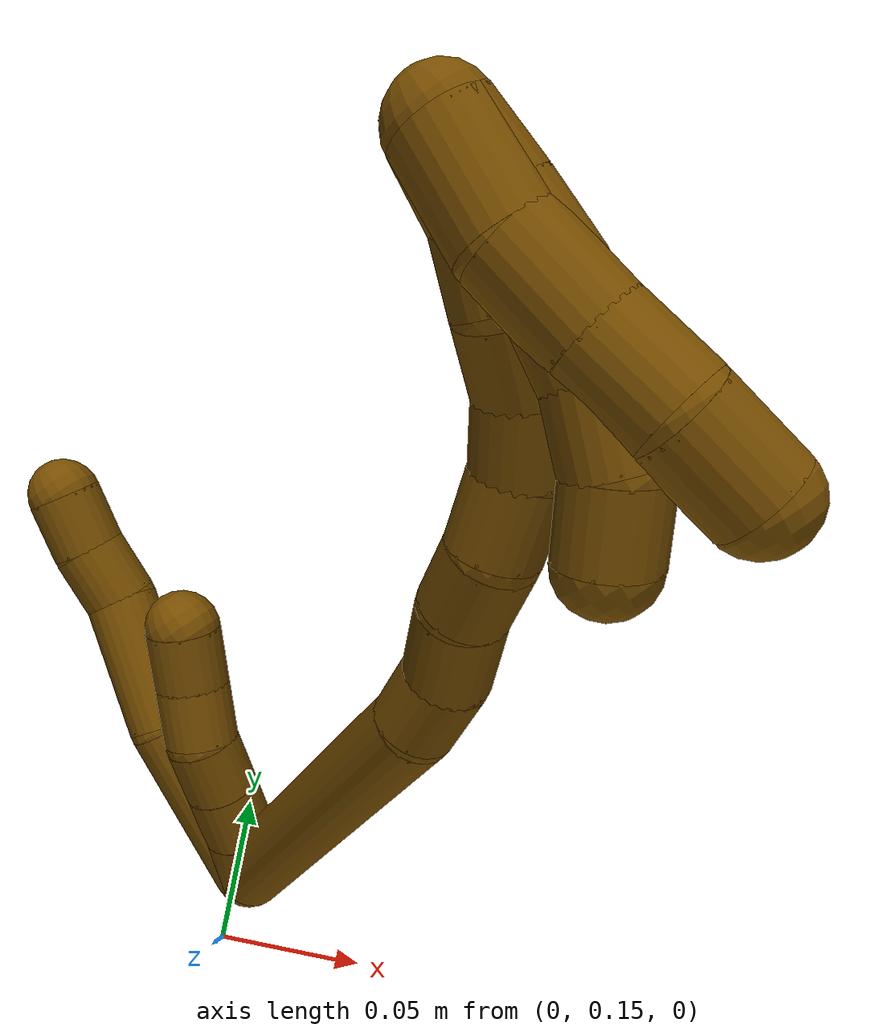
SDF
<sdf version="1.7">
 <world name="default">
  <model name="12">
   <static>0</static>
   <link name="12">
    <collision name="collision-cylinder-e_1_2_8">
     <pose>0.002709 -0.005069 0.030578 0.164292 0.087176 0.007182</pose>
     <geometry><cylinder><radius>0.0125</radius><length>0.062227</length></cylinder></geometry>
     <surface>
      <friction><ode><mu>1.16</mu><mu2>1.16</mu2><slip1>0</slip1><slip2>0</slip2></ode></friction>
      <contact><ode><kp>1e+06</kp><kd>1</kd><max_vel>0</max_vel><min_depth>0.001</min_depth></ode></contact>
     </surface>
    </collision>
    <visual name="visual-cylinder-e_1_2_8">
     <pose>0.002709 -0.005069 0.030578 0.164292 0.087176 0.007182</pose>
     <geometry><cylinder><radius>0.0125</radius><length>0.062227</length></cylinder></geometry>
     <material><ambient>0.466667 0.301961 0 1</ambient></material>
    </visual>
    <collision name="collision-cylinder-e_2_8_9">
     <pose>0.011655 -0.010178 0.083678 0.001749 0.270151 0.000238</pose>
     <geometry><cylinder><radius>0.0125</radius><length>0.04674</length></cylinder></geometry>
     <surface>
      <friction><ode><mu>1.16</mu><mu2>1.16</mu2><slip1>0</slip1><slip2>0</slip2></ode></friction>
      <contact><ode><kp>1e+06</kp><kd>1</kd><max_vel>0</max_vel><min_depth>0.001</min_depth></ode></contact>
     </surface>
    </collision>
    <visual name="visual-cylinder-e_2_8_9">
     <pose>0.011655 -0.010178 0.083678 0.001749 0.270151 0.000238</pose>
     <geometry><cylinder><radius>0.0125</radius><length>0.04674</length></cylinder></geometry>
     <material><ambient>0.466667 0.301961 0 1</ambient></material>
    </visual>
    <collision name="collision-cylinder-e_3_9_10">
     <pose>0.018298 -0.011601 0.116473 0.133887 0.039134 0.002624</pose>
     <geometry><cylinder><radius>0.0125</radius><length>0.020746</length></cylinder></geometry>
     <surface>
      <friction><ode><mu>1.16</mu><mu2>1.16</mu2><slip1>0</slip1><slip2>0</slip2></ode></friction>
      <contact><ode><kp>1e+06</kp><kd>1</kd><max_vel>0</max_vel><min_depth>0.001</min_depth></ode></contact>
     </surface>
    </collision>
    <visual name="visual-cylinder-e_3_9_10">
     <pose>0.018298 -0.011601 0.116473 0.133887 0.039134 0.002624</pose>
     <geometry><cylinder><radius>0.0125</radius><length>0.020746</length></cylinder></geometry>
     <material><ambient>0.466667 0.301961 0 1</ambient></material>
    </visual>
    <collision name="collision-cylinder-e_4_10_6">
     <pose>0.020516 -0.014811 0.136557 0.184022 0.179674 0.016623</pose>
     <geometry><cylinder><radius>0.0125</radius><length>0.020287</length></cylinder></geometry>
     <surface>
      <friction><ode><mu>1.16</mu><mu2>1.16</mu2><slip1>0</slip1><slip2>0</slip2></ode></friction>
      <contact><ode><kp>1e+06</kp><kd>1</kd><max_vel>0</max_vel><min_depth>0.001</min_depth></ode></contact>
     </surface>
    </collision>
    <visual name="visual-cylinder-e_4_10_6">
     <pose>0.020516 -0.014811 0.136557 0.184022 0.179674 0.016623</pose>
     <geometry><cylinder><radius>0.0125</radius><length>0.020287</length></cylinder></geometry>
     <material><ambient>0.466667 0.301961 0 1</ambient></material>
    </visual>
    <collision name="collision-cylinder-e_1_2_11">
     <pose>0.003097 -0.005354 0.007858 0.598152 0.314853 0.097809</pose>
     <geometry><cylinder><radius>0.0125</radius><length>0.02</length></cylinder></geometry>
     <surface>
      <friction><ode><mu>1.16</mu><mu2>1.16</mu2><slip1>0</slip1><slip2>0</slip2></ode></friction>
      <contact><ode><kp>1e+06</kp><kd>1</kd><max_vel>0</max_vel><min_depth>0.001</min_depth></ode></contact>
     </surface>
    </collision>
    <visual name="visual-cylinder-e_1_2_11">
     <pose>0.003097 -0.005354 0.007858 0.598152 0.314853 0.097809</pose>
     <geometry><cylinder><radius>0.0125</radius><length>0.02</length></cylinder></geometry>
     <material><ambient>0.466667 0.301961 0 1</ambient></material>
    </visual>
    <collision name="collision-cylinder-e_2_11_12">
     <pose>0.008187 -0.015218 0.024415 0.478145 0.200645 0.049059</pose>
     <geometry><cylinder><radius>0.0125</radius><length>0.02</length></cylinder></geometry>
     <surface>
      <friction><ode><mu>1.16</mu><mu2>1.16</mu2><slip1>0</slip1><slip2>0</slip2></ode></friction>
      <contact><ode><kp>1e+06</kp><kd>1</kd><max_vel>0</max_vel><min_depth>0.001</min_depth></ode></contact>
     </surface>
    </collision>
    <visual name="visual-cylinder-e_2_11_12">
     <pose>0.008187 -0.015218 0.024415 0.478145 0.200645 0.049059</pose>
     <geometry><cylinder><radius>0.0125</radius><length>0.02</length></cylinder></geometry>
     <material><ambient>0.466667 0.301961 0 1</ambient></material>
    </visual>
    <collision name="collision-cylinder-e_3_12_13">
     <pose>0.012157 -0.024094 0.041892 0.461749 0.199069 0.046941</pose>
     <geometry><cylinder><radius>0.0125</radius><length>0.02</length></cylinder></geometry>
     <surface>
      <friction><ode><mu>1.16</mu><mu2>1.16</mu2><slip1>0</slip1><slip2>0</slip2></ode></friction>
      <contact><ode><kp>1e+06</kp><kd>1</kd><max_vel>0</max_vel><min_depth>0.001</min_depth></ode></contact>
     </surface>
    </collision>
    <visual name="visual-cylinder-e_3_12_13">
     <pose>0.012157 -0.024094 0.041892 0.461749 0.199069 0.046941</pose>
     <geometry><cylinder><radius>0.0125</radius><length>0.02</length></cylinder></geometry>
     <material><ambient>0.466667 0.301961 0 1</ambient></material>
    </visual>
    <collision name="collision-cylinder-e_4_13_14">
     <pose>0.01824 -0.031106 0.059394 0.294319 0.423086 0.063646</pose>
     <geometry><cylinder><radius>0.0125</radius><length>0.02</length></cylinder></geometry>
     <surface>
      <friction><ode><mu>1.16</mu><mu2>1.16</mu2><slip1>0</slip1><slip2>0</slip2></ode></friction>
      <contact><ode><kp>1e+06</kp><kd>1</kd><max_vel>0</max_vel><min_depth>0.001</min_depth></ode></contact>
     </surface>
    </collision>
    <visual name="visual-cylinder-e_4_13_14">
     <pose>0.01824 -0.031106 0.059394 0.294319 0.423086 0.063646</pose>
     <geometry><cylinder><radius>0.0125</radius><length>0.02</length></cylinder></geometry>
     <material><ambient>0.466667 0.301961 0 1</ambient></material>
    </visual>
    <collision name="collision-cylinder-e_5_14_5">
     <pose>0.026336 -0.037247 0.076597 0.391095 0.410416 0.082409</pose>
     <geometry><cylinder><radius>0.0125</radius><length>0.02</length></cylinder></geometry>
     <surface>
      <friction><ode><mu>1.16</mu><mu2>1.16</mu2><slip1>0</slip1><slip2>0</slip2></ode></friction>
      <contact><ode><kp>1e+06</kp><kd>1</kd><max_vel>0</max_vel><min_depth>0.001</min_depth></ode></contact>
     </surface>
    </collision>
    <visual name="visual-cylinder-e_5_14_5">
     <pose>0.026336 -0.037247 0.076597 0.391095 0.410416 0.082409</pose>
     <geometry><cylinder><radius>0.0125</radius><length>0.02</length></cylinder></geometry>
     <material><ambient>0.466667 0.301961 0 1</ambient></material>
    </visual>
    <collision name="collision-cylinder-e_1_2_15">
     <pose>0.03478 -0.05274 0.012452 1.33894 0.570596 0.456151</pose>
     <geometry><cylinder><radius>0.0125</radius><length>0.128782</length></cylinder></geometry>
     <surface>
      <friction><ode><mu>1.16</mu><mu2>1.16</mu2><slip1>0</slip1><slip2>0</slip2></ode></friction>
      <contact><ode><kp>1e+06</kp><kd>1</kd><max_vel>0</max_vel><min_depth>0.001</min_depth></ode></contact>
     </surface>
    </collision>
    <visual name="visual-cylinder-e_1_2_15">
     <pose>0.03478 -0.05274 0.012452 1.33894 0.570596 0.456151</pose>
     <geometry><cylinder><radius>0.0125</radius><length>0.128782</length></cylinder></geometry>
     <material><ambient>0.466667 0.301961 0 1</ambient></material>
    </visual>
    <collision name="collision-cylinder-e_2_15_16">
     <pose>0.076285 -0.113045 0.028891 1.08583 0.666467 0.411805</pose>
     <geometry><cylinder><radius>0.0125</radius><length>0.021759</length></cylinder></geometry>
     <surface>
      <friction><ode><mu>1.16</mu><mu2>1.16</mu2><slip1>0</slip1><slip2>0</slip2></ode></friction>
      <contact><ode><kp>1e+06</kp><kd>1</kd><max_vel>0</max_vel><min_depth>0.001</min_depth></ode></contact>
     </surface>
    </collision>
    <visual name="visual-cylinder-e_2_15_16">
     <pose>0.076285 -0.113045 0.028891 1.08583 0.666467 0.411805</pose>
     <geometry><cylinder><radius>0.0125</radius><length>0.021759</length></cylinder></geometry>
     <material><ambient>0.466667 0.301961 0 1</ambient></material>
    </visual>
    <collision name="collision-cylinder-e_3_16_17">
     <pose>0.087818 -0.131641 0.039806 1.00994 0.3535 0.196827</pose>
     <geometry><cylinder><radius>0.0125</radius><length>0.02777</length></cylinder></geometry>
     <surface>
      <friction><ode><mu>1.16</mu><mu2>1.16</mu2><slip1>0</slip1><slip2>0</slip2></ode></friction>
      <contact><ode><kp>1e+06</kp><kd>1</kd><max_vel>0</max_vel><min_depth>0.001</min_depth></ode></contact>
     </surface>
    </collision>
    <visual name="visual-cylinder-e_3_16_17">
     <pose>0.087818 -0.131641 0.039806 1.00994 0.3535 0.196827</pose>
     <geometry><cylinder><radius>0.0125</radius><length>0.02777</length></cylinder></geometry>
     <material><ambient>0.466667 0.301961 0 1</ambient></material>
    </visual>
    <collision name="collision-cylinder-e_4_17_18">
     <pose>0.098012 -0.150235 0.050986 1.05869 0.555727 0.330708</pose>
     <geometry><cylinder><radius>0.0125</radius><length>0.020425</length></cylinder></geometry>
     <surface>
      <friction><ode><mu>1.16</mu><mu2>1.16</mu2><slip1>0</slip1><slip2>0</slip2></ode></friction>
      <contact><ode><kp>1e+06</kp><kd>1</kd><max_vel>0</max_vel><min_depth>0.001</min_depth></ode></contact>
     </surface>
    </collision>
    <visual name="visual-cylinder-e_4_17_18">
     <pose>0.098012 -0.150235 0.050986 1.05869 0.555727 0.330708</pose>
     <geometry><cylinder><radius>0.0125</radius><length>0.020425</length></cylinder></geometry>
     <material><ambient>0.466667 0.301961 0 1</ambient></material>
    </visual>
    <collision name="collision-cylinder-e_5_18_19">
     <pose>0.109945 -0.163469 0.061326 0.749909 0.666508 0.270815</pose>
     <geometry><cylinder><radius>0.0125</radius><length>0.021173</length></cylinder></geometry>
     <surface>
      <friction><ode><mu>1.16</mu><mu2>1.16</mu2><slip1>0</slip1><slip2>0</slip2></ode></friction>
      <contact><ode><kp>1e+06</kp><kd>1</kd><max_vel>0</max_vel><min_depth>0.001</min_depth></ode></contact>
     </surface>
    </collision>
    <visual name="visual-cylinder-e_5_18_19">
     <pose>0.109945 -0.163469 0.061326 0.749909 0.666508 0.270815</pose>
     <geometry><cylinder><radius>0.0125</radius><length>0.021173</length></cylinder></geometry>
     <material><ambient>0.466667 0.301961 0 1</ambient></material>
    </visual>
    <collision name="collision-cylinder-e_6_19_20">
     <pose>0.12054 -0.174811 0.074631 0.666035 0.415546 0.145584</pose>
     <geometry><cylinder><radius>0.0125</radius><length>0.020062</length></cylinder></geometry>
     <surface>
      <friction><ode><mu>1.16</mu><mu2>1.16</mu2><slip1>0</slip1><slip2>0</slip2></ode></friction>
      <contact><ode><kp>1e+06</kp><kd>1</kd><max_vel>0</max_vel><min_depth>0.001</min_depth></ode></contact>
     </surface>
    </collision>
    <visual name="visual-cylinder-e_6_19_20">
     <pose>0.12054 -0.174811 0.074631 0.666035 0.415546 0.145584</pose>
     <geometry><cylinder><radius>0.0125</radius><length>0.020062</length></cylinder></geometry>
     <material><ambient>0.466667 0.301961 0 1</ambient></material>
    </visual>
    <collision name="collision-cylinder-e_7_20_21">
     <pose>0.126046 -0.185841 0.090163 0.57254 0.146224 0.043112</pose>
     <geometry><cylinder><radius>0.0125</radius><length>0.020001</length></cylinder></geometry>
     <surface>
      <friction><ode><mu>1.16</mu><mu2>1.16</mu2><slip1>0</slip1><slip2>0</slip2></ode></friction>
      <contact><ode><kp>1e+06</kp><kd>1</kd><max_vel>0</max_vel><min_depth>0.001</min_depth></ode></contact>
     </surface>
    </collision>
    <visual name="visual-cylinder-e_7_20_21">
     <pose>0.126046 -0.185841 0.090163 0.57254 0.146224 0.043112</pose>
     <geometry><cylinder><radius>0.0125</radius><length>0.020001</length></cylinder></geometry>
     <material><ambient>0.466667 0.301961 0 1</ambient></material>
    </visual>
    <collision name="collision-cylinder-e_8_21_22">
     <pose>0.130138 -0.194071 0.107689 0.302084 0.266617 0.040816</pose>
     <geometry><cylinder><radius>0.0125</radius><length>0.02</length></cylinder></geometry>
     <surface>
      <friction><ode><mu>1.16</mu><mu2>1.16</mu2><slip1>0</slip1><slip2>0</slip2></ode></friction>
      <contact><ode><kp>1e+06</kp><kd>1</kd><max_vel>0</max_vel><min_depth>0.001</min_depth></ode></contact>
     </surface>
    </collision>
    <visual name="visual-cylinder-e_8_21_22">
     <pose>0.130138 -0.194071 0.107689 0.302084 0.266617 0.040816</pose>
     <geometry><cylinder><radius>0.0125</radius><length>0.02</length></cylinder></geometry>
     <material><ambient>0.466667 0.301961 0 1</ambient></material>
    </visual>
    <collision name="collision-cylinder-e_9_22_1">
     <pose>0.13248 -0.201255 0.125932 0.445558 -0.029259 -0.006629</pose>
     <geometry><cylinder><radius>0.0125</radius><length>0.020027</length></cylinder></geometry>
     <surface>
      <friction><ode><mu>1.16</mu><mu2>1.16</mu2><slip1>0</slip1><slip2>0</slip2></ode></friction>
      <contact><ode><kp>1e+06</kp><kd>1</kd><max_vel>0</max_vel><min_depth>0.001</min_depth></ode></contact>
     </surface>
    </collision>
    <visual name="visual-cylinder-e_9_22_1">
     <pose>0.13248 -0.201255 0.125932 0.445558 -0.029259 -0.006629</pose>
     <geometry><cylinder><radius>0.0125</radius><length>0.020027</length></cylinder></geometry>
     <material><ambient>0.466667 0.301961 0 1</ambient></material>
    </visual>
    <collision name="collision-cylinder-e_1_1_23">
     <pose>0.130802 -0.207119 0.121569 3.02638 -0.102327 -1.45226</pose>
     <geometry><cylinder><radius>0.0125</radius><length>0.02711</length></cylinder></geometry>
     <surface>
      <friction><ode><mu>1.16</mu><mu2>1.16</mu2><slip1>0</slip1><slip2>0</slip2></ode></friction>
      <contact><ode><kp>1e+06</kp><kd>1</kd><max_vel>0</max_vel><min_depth>0.001</min_depth></ode></contact>
     </surface>
    </collision>
    <visual name="visual-cylinder-e_1_1_23">
     <pose>0.130802 -0.207119 0.121569 3.02638 -0.102327 -1.45226</pose>
     <geometry><cylinder><radius>0.0125</radius><length>0.02711</length></cylinder></geometry>
     <material><ambient>0.466667 0.301961 0 1</ambient></material>
    </visual>
    <collision name="collision-cylinder-e_2_23_24">
     <pose>0.130936 -0.210336 0.095449 3.01137 0.117719 1.46977</pose>
     <geometry><cylinder><radius>0.0125</radius><length>0.025847</length></cylinder></geometry>
     <surface>
      <friction><ode><mu>1.16</mu><mu2>1.16</mu2><slip1>0</slip1><slip2>0</slip2></ode></friction>
      <contact><ode><kp>1e+06</kp><kd>1</kd><max_vel>0</max_vel><min_depth>0.001</min_depth></ode></contact>
     </surface>
    </collision>
    <visual name="visual-cylinder-e_2_23_24">
     <pose>0.130936 -0.210336 0.095449 3.01137 0.117719 1.46977</pose>
     <geometry><cylinder><radius>0.0125</radius><length>0.025847</length></cylinder></geometry>
     <material><ambient>0.466667 0.301961 0 1</ambient></material>
    </visual>
    <collision name="collision-cylinder-e_3_24_25">
     <pose>0.134194 -0.214072 0.071605 2.95752 0.152726 1.38434</pose>
     <geometry><cylinder><radius>0.0125</radius><length>0.022886</length></cylinder></geometry>
     <surface>
      <friction><ode><mu>1.16</mu><mu2>1.16</mu2><slip1>0</slip1><slip2>0</slip2></ode></friction>
      <contact><ode><kp>1e+06</kp><kd>1</kd><max_vel>0</max_vel><min_depth>0.001</min_depth></ode></contact>
     </surface>
    </collision>
    <visual name="visual-cylinder-e_3_24_25">
     <pose>0.134194 -0.214072 0.071605 2.95752 0.152726 1.38434</pose>
     <geometry><cylinder><radius>0.0125</radius><length>0.022886</length></cylinder></geometry>
     <material><ambient>0.466667 0.301961 0 1</ambient></material>
    </visual>
    <collision name="collision-cylinder-e_4_25_4">
     <pose>0.138546 -0.215113 0.048738 -3.0542 0.217841 -2.38088</pose>
     <geometry><cylinder><radius>0.0125</radius><length>0.024157</length></cylinder></geometry>
     <surface>
      <friction><ode><mu>1.16</mu><mu2>1.16</mu2><slip1>0</slip1><slip2>0</slip2></ode></friction>
      <contact><ode><kp>1e+06</kp><kd>1</kd><max_vel>0</max_vel><min_depth>0.001</min_depth></ode></contact>
     </surface>
    </collision>
    <visual name="visual-cylinder-e_4_25_4">
     <pose>0.138546 -0.215113 0.048738 -3.0542 0.217841 -2.38088</pose>
     <geometry><cylinder><radius>0.0125</radius><length>0.024157</length></cylinder></geometry>
     <material><ambient>0.466667 0.301961 0 1</ambient></material>
    </visual>
    <collision name="collision-cylinder-e_1_1_26">
     <pose>0.132734 -0.205599 0.124979 3.13862 0.054777 3.03301</pose>
     <geometry><cylinder><radius>0.0125</radius><length>0.02</length></cylinder></geometry>
     <surface>
      <friction><ode><mu>1.16</mu><mu2>1.16</mu2><slip1>0</slip1><slip2>0</slip2></ode></friction>
      <contact><ode><kp>1e+06</kp><kd>1</kd><max_vel>0</max_vel><min_depth>0.001</min_depth></ode></contact>
     </surface>
    </collision>
    <visual name="visual-cylinder-e_1_1_26">
     <pose>0.132734 -0.205599 0.124979 3.13862 0.054777 3.03301</pose>
     <geometry><cylinder><radius>0.0125</radius><length>0.02</length></cylinder></geometry>
     <material><ambient>0.466667 0.301961 0 1</ambient></material>
    </visual>
    <collision name="collision-cylinder-e_2_26_27">
     <pose>0.133148 -0.206221 0.105012 3.08225 -0.013397 -0.443973</pose>
     <geometry><cylinder><radius>0.0125</radius><length>0.02</length></cylinder></geometry>
     <surface>
      <friction><ode><mu>1.16</mu><mu2>1.16</mu2><slip1>0</slip1><slip2>0</slip2></ode></friction>
      <contact><ode><kp>1e+06</kp><kd>1</kd><max_vel>0</max_vel><min_depth>0.001</min_depth></ode></contact>
     </surface>
    </collision>
    <visual name="visual-cylinder-e_2_26_27">
     <pose>0.133148 -0.206221 0.105012 3.08225 -0.013397 -0.443973</pose>
     <geometry><cylinder><radius>0.0125</radius><length>0.02</length></cylinder></geometry>
     <material><ambient>0.466667 0.301961 0 1</ambient></material>
    </visual>
    <collision name="collision-cylinder-e_3_27_28">
     <pose>0.131618 -0.206404 0.085137 -3.1002 -0.1401 2.5678</pose>
     <geometry><cylinder><radius>0.0125</radius><length>0.02</length></cylinder></geometry>
     <surface>
      <friction><ode><mu>1.16</mu><mu2>1.16</mu2><slip1>0</slip1><slip2>0</slip2></ode></friction>
      <contact><ode><kp>1e+06</kp><kd>1</kd><max_vel>0</max_vel><min_depth>0.001</min_depth></ode></contact>
     </surface>
    </collision>
    <visual name="visual-cylinder-e_3_27_28">
     <pose>0.131618 -0.206404 0.085137 -3.1002 -0.1401 2.5678</pose>
     <geometry><cylinder><radius>0.0125</radius><length>0.02</length></cylinder></geometry>
     <material><ambient>0.466667 0.301961 0 1</ambient></material>
    </visual>
    <collision name="collision-cylinder-e_4_28_29">
     <pose>0.127108 -0.204178 0.065916 -2.94925 -0.316541 2.05428</pose>
     <geometry><cylinder><radius>0.0125</radius><length>0.02</length></cylinder></geometry>
     <surface>
      <friction><ode><mu>1.16</mu><mu2>1.16</mu2><slip1>0</slip1><slip2>0</slip2></ode></friction>
      <contact><ode><kp>1e+06</kp><kd>1</kd><max_vel>0</max_vel><min_depth>0.001</min_depth></ode></contact>
     </surface>
    </collision>
    <visual name="visual-cylinder-e_4_28_29">
     <pose>0.127108 -0.204178 0.065916 -2.94925 -0.316541 2.05428</pose>
     <geometry><cylinder><radius>0.0125</radius><length>0.02</length></cylinder></geometry>
     <material><ambient>0.466667 0.301961 0 1</ambient></material>
    </visual>
    <collision name="collision-cylinder-e_5_29_3">
     <pose>0.118978 -0.198276 0.048963 -2.64975 -0.525579 1.64002</pose>
     <geometry><cylinder><radius>0.0125</radius><length>0.02</length></cylinder></geometry>
     <surface>
      <friction><ode><mu>1.16</mu><mu2>1.16</mu2><slip1>0</slip1><slip2>0</slip2></ode></friction>
      <contact><ode><kp>1e+06</kp><kd>1</kd><max_vel>0</max_vel><min_depth>0.001</min_depth></ode></contact>
     </surface>
    </collision>
    <visual name="visual-cylinder-e_5_29_3">
     <pose>0.118978 -0.198276 0.048963 -2.64975 -0.525579 1.64002</pose>
     <geometry><cylinder><radius>0.0125</radius><length>0.02</length></cylinder></geometry>
     <material><ambient>0.466667 0.301961 0 1</ambient></material>
    </visual>
    <collision name="collision-sphere-3">
     <pose>0.113961 -0.194191 0.041338 0 -0 0</pose>
     <geometry><sphere><radius>0.0125</radius></sphere></geometry>
     <surface>
      <friction><ode><mu>1.16</mu><mu2>1.16</mu2><slip1>0</slip1><slip2>0</slip2></ode></friction>
      <contact><ode><kp>1e+06</kp><kd>1</kd><max_vel>0</max_vel><min_depth>0.001</min_depth></ode></contact>
     </surface>
    </collision>
    <visual name="visual-sphere-3">
     <pose>0.113961 -0.194191 0.041338 0 -0 0</pose>
     <geometry><sphere><radius>0.0125</radius></sphere></geometry>
     <material><ambient>0.466667 0.301961 0 1</ambient></material>
    </visual>
    <collision name="collision-sphere-29">
     <pose>0.123996 -0.202362 0.056588 0 -0 0</pose>
     <geometry><sphere><radius>0.0125</radius></sphere></geometry>
     <surface>
      <friction><ode><mu>1.16</mu><mu2>1.16</mu2><slip1>0</slip1><slip2>0</slip2></ode></friction>
      <contact><ode><kp>1e+06</kp><kd>1</kd><max_vel>0</max_vel><min_depth>0.001</min_depth></ode></contact>
     </surface>
    </collision>
    <visual name="visual-sphere-29">
     <pose>0.123996 -0.202362 0.056588 0 -0 0</pose>
     <geometry><sphere><radius>0.0125</radius></sphere></geometry>
     <material><ambient>0.466667 0.301961 0 1</ambient></material>
    </visual>
    <collision name="collision-sphere-28">
     <pose>0.130221 -0.205995 0.075244 0 -0 0</pose>
     <geometry><sphere><radius>0.0125</radius></sphere></geometry>
     <surface>
      <friction><ode><mu>1.16</mu><mu2>1.16</mu2><slip1>0</slip1><slip2>0</slip2></ode></friction>
      <contact><ode><kp>1e+06</kp><kd>1</kd><max_vel>0</max_vel><min_depth>0.001</min_depth></ode></contact>
     </surface>
    </collision>
    <visual name="visual-sphere-28">
     <pose>0.130221 -0.205995 0.075244 0 -0 0</pose>
     <geometry><sphere><radius>0.0125</radius></sphere></geometry>
     <material><ambient>0.466667 0.301961 0 1</ambient></material>
    </visual>
    <collision name="collision-sphere-27">
     <pose>0.133014 -0.206814 0.095031 0 -0 0</pose>
     <geometry><sphere><radius>0.0125</radius></sphere></geometry>
     <surface>
      <friction><ode><mu>1.16</mu><mu2>1.16</mu2><slip1>0</slip1><slip2>0</slip2></ode></friction>
      <contact><ode><kp>1e+06</kp><kd>1</kd><max_vel>0</max_vel><min_depth>0.001</min_depth></ode></contact>
     </surface>
    </collision>
    <visual name="visual-sphere-27">
     <pose>0.133014 -0.206814 0.095031 0 -0 0</pose>
     <geometry><sphere><radius>0.0125</radius></sphere></geometry>
     <material><ambient>0.466667 0.301961 0 1</ambient></material>
    </visual>
    <collision name="collision-sphere-26">
     <pose>0.133282 -0.205628 0.114994 0 -0 0</pose>
     <geometry><sphere><radius>0.0125</radius></sphere></geometry>
     <surface>
      <friction><ode><mu>1.16</mu><mu2>1.16</mu2><slip1>0</slip1><slip2>0</slip2></ode></friction>
      <contact><ode><kp>1e+06</kp><kd>1</kd><max_vel>0</max_vel><min_depth>0.001</min_depth></ode></contact>
     </surface>
    </collision>
    <visual name="visual-sphere-26">
     <pose>0.133282 -0.205628 0.114994 0 -0 0</pose>
     <geometry><sphere><radius>0.0125</radius></sphere></geometry>
     <material><ambient>0.466667 0.301961 0 1</ambient></material>
    </visual>
    <collision name="collision-sphere-4">
     <pose>0.141156 -0.214084 0.03699 0 -0 0</pose>
     <geometry><sphere><radius>0.0125</radius></sphere></geometry>
     <surface>
      <friction><ode><mu>1.16</mu><mu2>1.16</mu2><slip1>0</slip1><slip2>0</slip2></ode></friction>
      <contact><ode><kp>1e+06</kp><kd>1</kd><max_vel>0</max_vel><min_depth>0.001</min_depth></ode></contact>
     </surface>
    </collision>
    <visual name="visual-sphere-4">
     <pose>0.141156 -0.214084 0.03699 0 -0 0</pose>
     <geometry><sphere><radius>0.0125</radius></sphere></geometry>
     <material><ambient>0.466667 0.301961 0 1</ambient></material>
    </visual>
    <collision name="collision-sphere-25">
     <pose>0.135935 -0.216142 0.060486 0 -0 0</pose>
     <geometry><sphere><radius>0.0125</radius></sphere></geometry>
     <surface>
      <friction><ode><mu>1.16</mu><mu2>1.16</mu2><slip1>0</slip1><slip2>0</slip2></ode></friction>
      <contact><ode><kp>1e+06</kp><kd>1</kd><max_vel>0</max_vel><min_depth>0.001</min_depth></ode></contact>
     </surface>
    </collision>
    <visual name="visual-sphere-25">
     <pose>0.135935 -0.216142 0.060486 0 -0 0</pose>
     <geometry><sphere><radius>0.0125</radius></sphere></geometry>
     <material><ambient>0.466667 0.301961 0 1</ambient></material>
    </visual>
    <collision name="collision-sphere-24">
     <pose>0.132453 -0.212002 0.082724 0 -0 0</pose>
     <geometry><sphere><radius>0.0125</radius></sphere></geometry>
     <surface>
      <friction><ode><mu>1.16</mu><mu2>1.16</mu2><slip1>0</slip1><slip2>0</slip2></ode></friction>
      <contact><ode><kp>1e+06</kp><kd>1</kd><max_vel>0</max_vel><min_depth>0.001</min_depth></ode></contact>
     </surface>
    </collision>
    <visual name="visual-sphere-24">
     <pose>0.132453 -0.212002 0.082724 0 -0 0</pose>
     <geometry><sphere><radius>0.0125</radius></sphere></geometry>
     <material><ambient>0.466667 0.301961 0 1</ambient></material>
    </visual>
    <collision name="collision-sphere-23">
     <pose>0.129418 -0.208669 0.108174 0 -0 0</pose>
     <geometry><sphere><radius>0.0125</radius></sphere></geometry>
     <surface>
      <friction><ode><mu>1.16</mu><mu2>1.16</mu2><slip1>0</slip1><slip2>0</slip2></ode></friction>
      <contact><ode><kp>1e+06</kp><kd>1</kd><max_vel>0</max_vel><min_depth>0.001</min_depth></ode></contact>
     </surface>
    </collision>
    <visual name="visual-sphere-23">
     <pose>0.129418 -0.208669 0.108174 0 -0 0</pose>
     <geometry><sphere><radius>0.0125</radius></sphere></geometry>
     <material><ambient>0.466667 0.301961 0 1</ambient></material>
    </visual>
    <collision name="collision-sphere-1">
     <pose>0.132187 -0.205569 0.134964 0 -0 0</pose>
     <geometry><sphere><radius>0.0125</radius></sphere></geometry>
     <surface>
      <friction><ode><mu>1.16</mu><mu2>1.16</mu2><slip1>0</slip1><slip2>0</slip2></ode></friction>
      <contact><ode><kp>1e+06</kp><kd>1</kd><max_vel>0</max_vel><min_depth>0.001</min_depth></ode></contact>
     </surface>
    </collision>
    <visual name="visual-sphere-1">
     <pose>0.132187 -0.205569 0.134964 0 -0 0</pose>
     <geometry><sphere><radius>0.0125</radius></sphere></geometry>
     <material><ambient>0.466667 0.301961 0 1</ambient></material>
    </visual>
    <collision name="collision-sphere-22">
     <pose>0.132773 -0.196941 0.116899 0 -0 0</pose>
     <geometry><sphere><radius>0.0125</radius></sphere></geometry>
     <surface>
      <friction><ode><mu>1.16</mu><mu2>1.16</mu2><slip1>0</slip1><slip2>0</slip2></ode></friction>
      <contact><ode><kp>1e+06</kp><kd>1</kd><max_vel>0</max_vel><min_depth>0.001</min_depth></ode></contact>
     </surface>
    </collision>
    <visual name="visual-sphere-22">
     <pose>0.132773 -0.196941 0.116899 0 -0 0</pose>
     <geometry><sphere><radius>0.0125</radius></sphere></geometry>
     <material><ambient>0.466667 0.301961 0 1</ambient></material>
    </visual>
    <collision name="collision-sphere-21">
     <pose>0.127503 -0.191201 0.098479 0 -0 0</pose>
     <geometry><sphere><radius>0.0125</radius></sphere></geometry>
     <surface>
      <friction><ode><mu>1.16</mu><mu2>1.16</mu2><slip1>0</slip1><slip2>0</slip2></ode></friction>
      <contact><ode><kp>1e+06</kp><kd>1</kd><max_vel>0</max_vel><min_depth>0.001</min_depth></ode></contact>
     </surface>
    </collision>
    <visual name="visual-sphere-21">
     <pose>0.127503 -0.191201 0.098479 0 -0 0</pose>
     <geometry><sphere><radius>0.0125</radius></sphere></geometry>
     <material><ambient>0.466667 0.301961 0 1</ambient></material>
    </visual>
    <collision name="collision-sphere-11">
     <pose>0.006194 -0.010709 0.015715 0 -0 0</pose>
     <geometry><sphere><radius>0.0125</radius></sphere></geometry>
     <surface>
      <friction><ode><mu>1.16</mu><mu2>1.16</mu2><slip1>0</slip1><slip2>0</slip2></ode></friction>
      <contact><ode><kp>1e+06</kp><kd>1</kd><max_vel>0</max_vel><min_depth>0.001</min_depth></ode></contact>
     </surface>
    </collision>
    <visual name="visual-sphere-11">
     <pose>0.006194 -0.010709 0.015715 0 -0 0</pose>
     <geometry><sphere><radius>0.0125</radius></sphere></geometry>
     <material><ambient>0.466667 0.301961 0 1</ambient></material>
    </visual>
    <collision name="collision-sphere-6">
     <pose>0.022329 -0.016637 0.146369 0 -0 0</pose>
     <geometry><sphere><radius>0.0125</radius></sphere></geometry>
     <surface>
      <friction><ode><mu>1.16</mu><mu2>1.16</mu2><slip1>0</slip1><slip2>0</slip2></ode></friction>
      <contact><ode><kp>1e+06</kp><kd>1</kd><max_vel>0</max_vel><min_depth>0.001</min_depth></ode></contact>
     </surface>
    </collision>
    <visual name="visual-sphere-6">
     <pose>0.022329 -0.016637 0.146369 0 -0 0</pose>
     <geometry><sphere><radius>0.0125</radius></sphere></geometry>
     <material><ambient>0.466667 0.301961 0 1</ambient></material>
    </visual>
    <collision name="collision-sphere-10">
     <pose>0.018703 -0.012985 0.126745 0 -0 0</pose>
     <geometry><sphere><radius>0.0125</radius></sphere></geometry>
     <surface>
      <friction><ode><mu>1.16</mu><mu2>1.16</mu2><slip1>0</slip1><slip2>0</slip2></ode></friction>
      <contact><ode><kp>1e+06</kp><kd>1</kd><max_vel>0</max_vel><min_depth>0.001</min_depth></ode></contact>
     </surface>
    </collision>
    <visual name="visual-sphere-10">
     <pose>0.018703 -0.012985 0.126745 0 -0 0</pose>
     <geometry><sphere><radius>0.0125</radius></sphere></geometry>
     <material><ambient>0.466667 0.301961 0 1</ambient></material>
    </visual>
    <collision name="collision-sphere-9">
     <pose>0.017892 -0.010218 0.106201 0 -0 0</pose>
     <geometry><sphere><radius>0.0125</radius></sphere></geometry>
     <surface>
      <friction><ode><mu>1.16</mu><mu2>1.16</mu2><slip1>0</slip1><slip2>0</slip2></ode></friction>
      <contact><ode><kp>1e+06</kp><kd>1</kd><max_vel>0</max_vel><min_depth>0.001</min_depth></ode></contact>
     </surface>
    </collision>
    <visual name="visual-sphere-9">
     <pose>0.017892 -0.010218 0.106201 0 -0 0</pose>
     <geometry><sphere><radius>0.0125</radius></sphere></geometry>
     <material><ambient>0.466667 0.301961 0 1</ambient></material>
    </visual>
    <collision name="collision-sphere-2">
     <geometry><sphere><radius>0.0125</radius></sphere></geometry>
     <surface>
      <friction><ode><mu>1.16</mu><mu2>1.16</mu2><slip1>0</slip1><slip2>0</slip2></ode></friction>
      <contact><ode><kp>1e+06</kp><kd>1</kd><max_vel>0</max_vel><min_depth>0.001</min_depth></ode></contact>
     </surface>
    </collision>
    <visual name="visual-sphere-2">
     <geometry><sphere><radius>0.0125</radius></sphere></geometry>
     <material><ambient>0.466667 0.301961 0 1</ambient></material>
    </visual>
    <collision name="collision-sphere-19">
     <pose>0.11649 -0.16914 0.067415 0 -0 0</pose>
     <geometry><sphere><radius>0.0125</radius></sphere></geometry>
     <surface>
      <friction><ode><mu>1.16</mu><mu2>1.16</mu2><slip1>0</slip1><slip2>0</slip2></ode></friction>
      <contact><ode><kp>1e+06</kp><kd>1</kd><max_vel>0</max_vel><min_depth>0.001</min_depth></ode></contact>
     </surface>
    </collision>
    <visual name="visual-sphere-19">
     <pose>0.11649 -0.16914 0.067415 0 -0 0</pose>
     <geometry><sphere><radius>0.0125</radius></sphere></geometry>
     <material><ambient>0.466667 0.301961 0 1</ambient></material>
    </visual>
    <collision name="collision-sphere-8">
     <pose>0.005418 -0.010139 0.061156 0 -0 0</pose>
     <geometry><sphere><radius>0.0125</radius></sphere></geometry>
     <surface>
      <friction><ode><mu>1.16</mu><mu2>1.16</mu2><slip1>0</slip1><slip2>0</slip2></ode></friction>
      <contact><ode><kp>1e+06</kp><kd>1</kd><max_vel>0</max_vel><min_depth>0.001</min_depth></ode></contact>
     </surface>
    </collision>
    <visual name="visual-sphere-8">
     <pose>0.005418 -0.010139 0.061156 0 -0 0</pose>
     <geometry><sphere><radius>0.0125</radius></sphere></geometry>
     <material><ambient>0.466667 0.301961 0 1</ambient></material>
    </visual>
    <collision name="collision-sphere-12">
     <pose>0.01018 -0.019727 0.033116 0 -0 0</pose>
     <geometry><sphere><radius>0.0125</radius></sphere></geometry>
     <surface>
      <friction><ode><mu>1.16</mu><mu2>1.16</mu2><slip1>0</slip1><slip2>0</slip2></ode></friction>
      <contact><ode><kp>1e+06</kp><kd>1</kd><max_vel>0</max_vel><min_depth>0.001</min_depth></ode></contact>
     </surface>
    </collision>
    <visual name="visual-sphere-12">
     <pose>0.01018 -0.019727 0.033116 0 -0 0</pose>
     <geometry><sphere><radius>0.0125</radius></sphere></geometry>
     <material><ambient>0.466667 0.301961 0 1</ambient></material>
    </visual>
    <collision name="collision-sphere-13">
     <pose>0.014135 -0.028461 0.050668 0 -0 0</pose>
     <geometry><sphere><radius>0.0125</radius></sphere></geometry>
     <surface>
      <friction><ode><mu>1.16</mu><mu2>1.16</mu2><slip1>0</slip1><slip2>0</slip2></ode></friction>
      <contact><ode><kp>1e+06</kp><kd>1</kd><max_vel>0</max_vel><min_depth>0.001</min_depth></ode></contact>
     </surface>
    </collision>
    <visual name="visual-sphere-13">
     <pose>0.014135 -0.028461 0.050668 0 -0 0</pose>
     <geometry><sphere><radius>0.0125</radius></sphere></geometry>
     <material><ambient>0.466667 0.301961 0 1</ambient></material>
    </visual>
    <collision name="collision-sphere-14">
     <pose>0.022346 -0.033751 0.06812 0 -0 0</pose>
     <geometry><sphere><radius>0.0125</radius></sphere></geometry>
     <surface>
      <friction><ode><mu>1.16</mu><mu2>1.16</mu2><slip1>0</slip1><slip2>0</slip2></ode></friction>
      <contact><ode><kp>1e+06</kp><kd>1</kd><max_vel>0</max_vel><min_depth>0.001</min_depth></ode></contact>
     </surface>
    </collision>
    <visual name="visual-sphere-14">
     <pose>0.022346 -0.033751 0.06812 0 -0 0</pose>
     <geometry><sphere><radius>0.0125</radius></sphere></geometry>
     <material><ambient>0.466667 0.301961 0 1</ambient></material>
    </visual>
    <collision name="collision-sphere-5">
     <pose>0.030326 -0.040742 0.085074 0 -0 0</pose>
     <geometry><sphere><radius>0.0125</radius></sphere></geometry>
     <surface>
      <friction><ode><mu>1.16</mu><mu2>1.16</mu2><slip1>0</slip1><slip2>0</slip2></ode></friction>
      <contact><ode><kp>1e+06</kp><kd>1</kd><max_vel>0</max_vel><min_depth>0.001</min_depth></ode></contact>
     </surface>
    </collision>
    <visual name="visual-sphere-5">
     <pose>0.030326 -0.040742 0.085074 0 -0 0</pose>
     <geometry><sphere><radius>0.0125</radius></sphere></geometry>
     <material><ambient>0.466667 0.301961 0 1</ambient></material>
    </visual>
    <collision name="collision-sphere-15">
     <pose>0.069559 -0.10548 0.024904 0 -0 0</pose>
     <geometry><sphere><radius>0.0125</radius></sphere></geometry>
     <surface>
      <friction><ode><mu>1.16</mu><mu2>1.16</mu2><slip1>0</slip1><slip2>0</slip2></ode></friction>
      <contact><ode><kp>1e+06</kp><kd>1</kd><max_vel>0</max_vel><min_depth>0.001</min_depth></ode></contact>
     </surface>
    </collision>
    <visual name="visual-sphere-15">
     <pose>0.069559 -0.10548 0.024904 0 -0 0</pose>
     <geometry><sphere><radius>0.0125</radius></sphere></geometry>
     <material><ambient>0.466667 0.301961 0 1</ambient></material>
    </visual>
    <collision name="collision-sphere-16">
     <pose>0.083011 -0.120611 0.032877 0 -0 0</pose>
     <geometry><sphere><radius>0.0125</radius></sphere></geometry>
     <surface>
      <friction><ode><mu>1.16</mu><mu2>1.16</mu2><slip1>0</slip1><slip2>0</slip2></ode></friction>
      <contact><ode><kp>1e+06</kp><kd>1</kd><max_vel>0</max_vel><min_depth>0.001</min_depth></ode></contact>
     </surface>
    </collision>
    <visual name="visual-sphere-16">
     <pose>0.083011 -0.120611 0.032877 0 -0 0</pose>
     <geometry><sphere><radius>0.0125</radius></sphere></geometry>
     <material><ambient>0.466667 0.301961 0 1</ambient></material>
    </visual>
    <collision name="collision-sphere-17">
     <pose>0.092625 -0.142672 0.046735 0 -0 0</pose>
     <geometry><sphere><radius>0.0125</radius></sphere></geometry>
     <surface>
      <friction><ode><mu>1.16</mu><mu2>1.16</mu2><slip1>0</slip1><slip2>0</slip2></ode></friction>
      <contact><ode><kp>1e+06</kp><kd>1</kd><max_vel>0</max_vel><min_depth>0.001</min_depth></ode></contact>
     </surface>
    </collision>
    <visual name="visual-sphere-17">
     <pose>0.092625 -0.142672 0.046735 0 -0 0</pose>
     <geometry><sphere><radius>0.0125</radius></sphere></geometry>
     <material><ambient>0.466667 0.301961 0 1</ambient></material>
    </visual>
    <collision name="collision-sphere-18">
     <pose>0.1034 -0.157797 0.055237 0 -0 0</pose>
     <geometry><sphere><radius>0.0125</radius></sphere></geometry>
     <surface>
      <friction><ode><mu>1.16</mu><mu2>1.16</mu2><slip1>0</slip1><slip2>0</slip2></ode></friction>
      <contact><ode><kp>1e+06</kp><kd>1</kd><max_vel>0</max_vel><min_depth>0.001</min_depth></ode></contact>
     </surface>
    </collision>
    <visual name="visual-sphere-18">
     <pose>0.1034 -0.157797 0.055237 0 -0 0</pose>
     <geometry><sphere><radius>0.0125</radius></sphere></geometry>
     <material><ambient>0.466667 0.301961 0 1</ambient></material>
    </visual>
    <collision name="collision-sphere-20">
     <pose>0.124589 -0.180481 0.081847 0 -0 0</pose>
     <geometry><sphere><radius>0.0125</radius></sphere></geometry>
     <surface>
      <friction><ode><mu>1.16</mu><mu2>1.16</mu2><slip1>0</slip1><slip2>0</slip2></ode></friction>
      <contact><ode><kp>1e+06</kp><kd>1</kd><max_vel>0</max_vel><min_depth>0.001</min_depth></ode></contact>
     </surface>
    </collision>
    <visual name="visual-sphere-20">
     <pose>0.124589 -0.180481 0.081847 0 -0 0</pose>
     <geometry><sphere><radius>0.0125</radius></sphere></geometry>
     <material><ambient>0.466667 0.301961 0 1</ambient></material>
    </visual>
    <inertial>
     <pose>0.06959 -0.106302 0.061382 0 -0 0</pose>
     <mass>0.75</mass>
     <inertia>
      <ixx>0.000277</ixx>
      <ixy>0</ixy>
      <ixz>0</ixz>
      <iyy>0.000189</iyy>
      <iyz>0</iyz>
      <izz>6.8e-05</izz>
     </inertia>
    </inertial>
   </link>
   <pose>0.005507 0.174789 0.011924 -1.3836 -0.032828 0.797059</pose>
  </model>
 </world>
</sdf>
